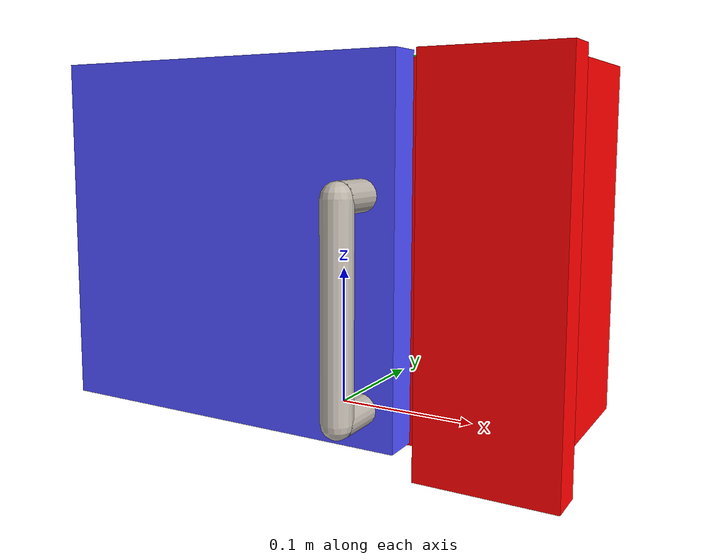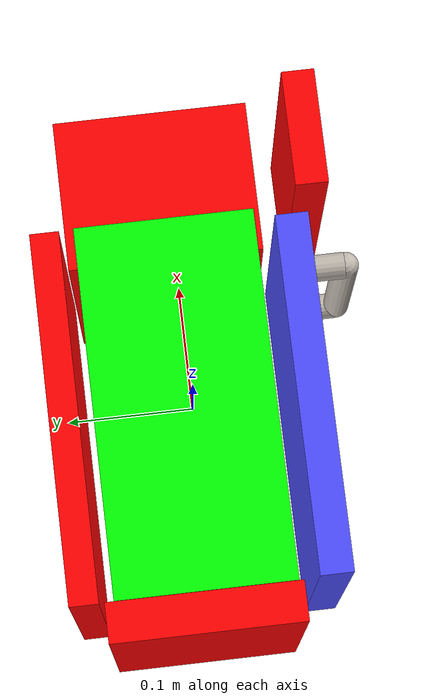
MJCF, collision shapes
<mujoco model="microwave">

    <compiler inertiafromgeom="auto" inertiagrouprange="4 4" angle="radian"/>
    <asset>
        <mesh file="micro.stl" name="micro" scale="0.6 0.5 0.65"/>
        <mesh file="microdoor.stl" name="microdoor" scale="0.6 0.5 0.65"/>
        <mesh file="microbutton.stl" name="microbutton" scale="0.6 0.5 0.65"/>
        <mesh file="microfeet.stl" name="microfeet" scale="0.6 0.5 0.65"/>
        <mesh file="microhandle.stl" name="microhandle" scale="0.6 0.5 0.65"/>
        <mesh file="microwindow.stl" name="microwindow" scale="0.6 0.5 0.65"/>

        <texture name="T_micro_metal" type="cube" height="1" width="1" file="metal1.png"/>

        <material name="micro_metal" rgba="1 1 1 1" texture="T_micro_metal" texrepeat="3 3" reflectance="1" shininess="1" texuniform="false"/>
        <material name="micro_black" rgba=".2 .2 .2 1" reflectance="1" shininess="1"/>
        <material name="micro_window" rgba=".4 .4 .4 .85" reflectance="1" shininess="1"/>
        <material name="micro_collision_blue" rgba="0.3 0.3 1.0 0.0" shininess="0" specular="0"/>
    </asset>

    <default>
        <default class="microwave">
            <geom conaffinity="0" contype="0" group="1" material="micro_black" type="mesh"/>
        </default>

        <default class="micro_collision">
            <geom group="1" margin="0.001" material="micro_collision_blue" solimp=".8 .9 .01" solref=".02 1"/>
        </default>
    </default>

    <worldbody>
    <body name="body_obj_microwave">
        <body name="mircowave_base" pos="0 0 0.0">
            <inertial pos="0 0 0" mass="100.0" diaginertia="100 100 100"/>
            <geom friction="0.95 0.3 0.1" class="microwave" mesh="micro"/>
            <geom friction="0.95 0.3 0.1" class="microwave" material="micro_metal" mesh="microbutton"/>
            <geom friction="0.95 0.3 0.1" class="microwave" material="micro_metal" mesh="microfeet"/>
            <geom friction="0.95 0.3 0.1" class="micro_collision" pos="-0.188 0.0115 0.12155" size="0.0145 0.06955 0.12155" type="box" mass="100" rgba="1 0 0 0"/>
            <geom friction="0.95 0.3 0.1" class="micro_collision" pos="0.118 0.0115 0.12155" size="0.0545 0.06955 0.12155" type="box" mass="100" rgba="1 0 0 0"/>
            <geom friction="0.95 0.3 0.1" class="micro_collision" pos="-0.0405 0.0955 0.12155" size="0.1335 0.0105 0.12155" type="box" mass="100" rgba="1 0 0 0"/>
            <geom friction="0.95 0.3 0.1" class="micro_collision" pos="-0.04 0.01 0.235" size="0.1335 0.0645 0.0095" type="box" mass="100" rgba="0 1 0 0"/>
            <geom friction="0.95 0.3 0.1" class="micro_collision" pos="-0.04 0.01 0.02" size="0.1335 0.064 0.012" type="box" mass="100" rgba="1 0 0 0"/>
            <geom friction="0.95 0.3 0.1" class="micro_collision" pos="0.15 -0.0985 0.12155" size="0.0425 0.012 0.12155" type="box" mass="100" rgba="1 0 0 0"/>
            <body name="body_obj_microwave_door" pos="-0.1725 -0.068 0.096">
                <joint type="hinge" axis="0 0 1" limited="true"
		       name="microjoint" range="-2.094 0" damping="0.5"/>
                <inertial pos="0 0 0" mass="0.5" diaginertia="0.005 0.005 0.005"/>
                <geom friction="0.95 0.3 0.1" class="microwave" mesh="microdoor" pos="0.1725 0.068 -0.096"/>
                <geom friction="0.95 0.3 0.1" class="microwave" material="micro_window" mesh="microwindow" pos="0.1725 0.068 -0.096"/>
                <geom friction="0.95 0.3 0.1" class="microwave" material="micro_metal" pos="0.2375 -0.054 0" size="0.01 0.065" type="capsule"/>
                <geom friction="0.95 0.3 0.1" class="microwave" material="micro_metal" euler="1.57 0 0" pos="0.2375 -0.0375 0.065" size="0.01 0.015" type="capsule"/>
                <geom friction="0.95 0.3 0.1" class="microwave" material="micro_metal" euler="1.57 0 0" pos="0.2375 -0.0375 -0.065" size="0.01 0.015" type="capsule"/>

                <geom friction="0.95 0.3 0.1" class="micro_collision" pos="0.2375 -0.054 0" size="0.01 0.065" type="capsule" mass="0.020"/>
                <geom friction="0.95 0.3 0.1" class="micro_collision" euler="1.57 0 0" pos="0.2375 -0.0375 .065" size="0.01 0.015" type="capsule" mass="0.020"  />
                <geom friction="0.95 0.3 0.1" class="micro_collision" euler="1.57 0 0" pos="0.2375 -0.0375 -.065" size="0.01 0.015" type="capsule" mass="0.020"/>
                <geom friction="0.95 0.3 0.1" class="micro_collision" pos="0.1295 -0.013 0.03" size="0.1295 0.012 0.12" type="box" mass="0.20"/>
            </body>
        </body>
        <site rgba="1 0 0 0" type="box" pos="-0.025 -0.05 -0.02" quat="1 0 0 0" size="0.0012 0.00835 0.005" name="heating_side"/>
        <site rgba="1 0 0 0" type="box" pos="-0.05 -0.01 0.03" quat="1 0 0 0" size="0.12 0.1 0.2" name="microwave_heating_region"/>
      <site rgba="0 0 0 0" size="0.005" pos="0 0 -0.06" name="bottom_site" />
      <site rgba="0 0 1 0" size="0.01 0.01 0.005" pos="0 0 0.06" name="top_site_microwave" />
      <site rgba="0 0 0 0" size="0.005" pos="0.015 0.015 0" name="horizontal_radius_site" />
    </body>
    </worldbody>

</mujoco>
